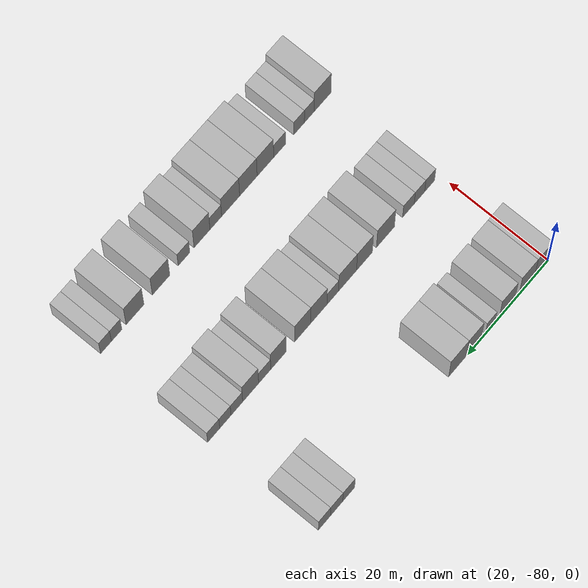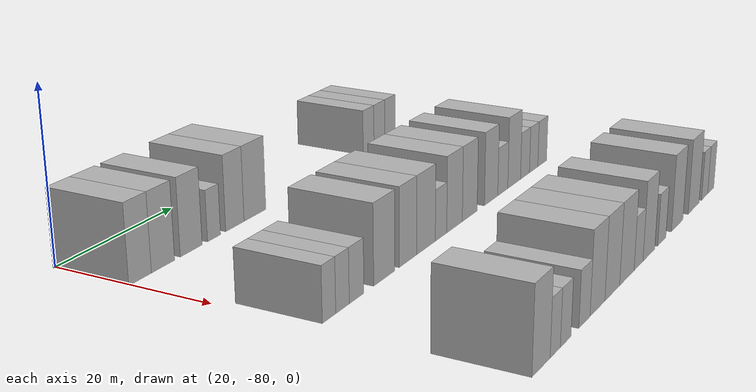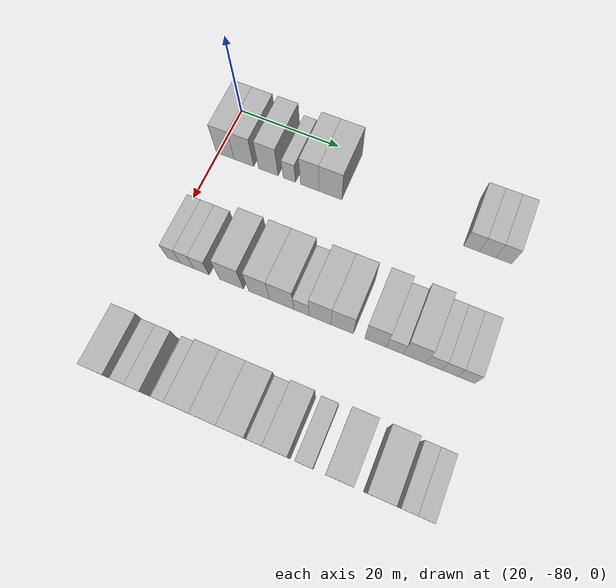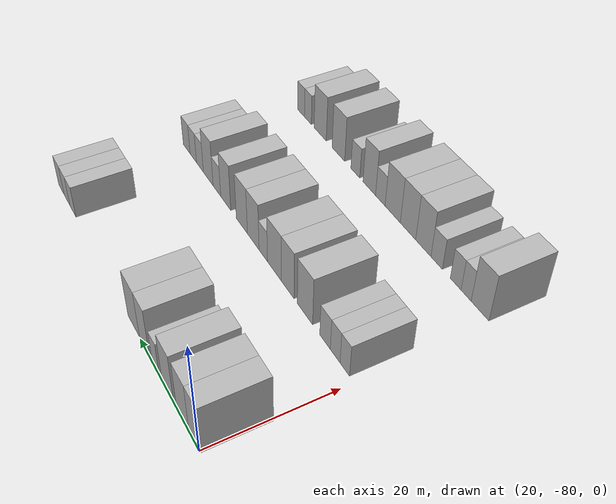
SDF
<sdf version="1.6">
 <world name="default">
  <model name="building_80">
   <static>1</static>
   <pose>25.0000 -78.4971 0 0.000000 0.000000 0.000000</pose>
   <link name="link">
    <pose>0 0 4.50 0 0 0</pose>
    <collision name="collision"><geometry><box><size>10.0000 3.6880 9.0000</size></box></geometry></collision>
    <visual name="visual">
     <cast_shadows>0</cast_shadows>
     <geometry><box><size>10.0000 3.6880 9.0000</size></box></geometry>
     <material>
      <script>
       <uri>model://HANNAS_wall/materials/scripts</uri>
       <uri>model://HANNAS_wall/materials/textures</uri>
       <name>vrc/HANNAS_wall</name>
      </script>
     </material>
    </visual>
   </link>
  </model>
  <model name="building_81">
   <static>1</static>
   <pose>25.0000 -74.6832 0 0.000000 0.000000 0.000000</pose>
   <link name="link">
    <pose>0 0 4.50 0 0 0</pose>
    <collision name="collision"><geometry><box><size>10.0000 3.9398 9.0000</size></box></geometry></collision>
    <visual name="visual">
     <cast_shadows>0</cast_shadows>
     <geometry><box><size>10.0000 3.9398 9.0000</size></box></geometry>
     <material>
      <script>
       <uri>model://HANNAS_wall/materials/scripts</uri>
       <uri>model://HANNAS_wall/materials/textures</uri>
       <name>vrc/HANNAS_wall</name>
      </script>
     </material>
    </visual>
   </link>
  </model>
  <model name="building_82">
   <static>1</static>
   <pose>25.0000 -69.7548 0 0.000000 0.000000 0.000000</pose>
   <link name="link">
    <pose>0 0 4.50 0 0 0</pose>
    <collision name="collision"><geometry><box><size>10.0000 3.9169 9.0000</size></box></geometry></collision>
    <visual name="visual">
     <cast_shadows>0</cast_shadows>
     <geometry><box><size>10.0000 3.9169 9.0000</size></box></geometry>
     <material>
      <script>
       <uri>model://HANNAS_wall/materials/scripts</uri>
       <uri>model://HANNAS_wall/materials/textures</uri>
       <name>vrc/HANNAS_wall</name>
      </script>
     </material>
    </visual>
   </link>
  </model>
  <model name="building_83">
   <static>1</static>
   <pose>25.0000 -65.5745 0 0.000000 0.000000 0.000000</pose>
   <link name="link">
    <pose>0 0 3.00 0 0 0</pose>
    <collision name="collision"><geometry><box><size>10.0000 2.4438 6.0000</size></box></geometry></collision>
    <visual name="visual">
     <cast_shadows>0</cast_shadows>
     <geometry><box><size>10.0000 2.4438 6.0000</size></box></geometry>
     <material>
      <script>
       <uri>model://HANNAS_wall/materials/scripts</uri>
       <uri>model://HANNAS_wall/materials/textures</uri>
       <name>vrc/HANNAS_wall</name>
      </script>
     </material>
    </visual>
   </link>
  </model>
  <model name="building_84">
   <static>1</static>
   <pose>25.0000 -61.5470 0 0.000000 0.000000 0.000000</pose>
   <link name="link">
    <pose>0 0 4.50 0 0 0</pose>
    <collision name="collision"><geometry><box><size>10.0000 3.6112 9.0000</size></box></geometry></collision>
    <visual name="visual">
     <cast_shadows>0</cast_shadows>
     <geometry><box><size>10.0000 3.6112 9.0000</size></box></geometry>
     <material>
      <script>
       <uri>model://HANNAS_wall/materials/scripts</uri>
       <uri>model://HANNAS_wall/materials/textures</uri>
       <name>vrc/HANNAS_wall</name>
      </script>
     </material>
    </visual>
   </link>
  </model>
  <model name="building_85">
   <static>1</static>
   <pose>25.0000 -57.5082 0 0.000000 0.000000 0.000000</pose>
   <link name="link">
    <pose>0 0 4.50 0 0 0</pose>
    <collision name="collision"><geometry><box><size>10.0000 4.4663 9.0000</size></box></geometry></collision>
    <visual name="visual">
     <cast_shadows>0</cast_shadows>
     <geometry><box><size>10.0000 4.4663 9.0000</size></box></geometry>
     <material>
      <script>
       <uri>model://HANNAS_wall/materials/scripts</uri>
       <uri>model://HANNAS_wall/materials/textures</uri>
       <name>vrc/HANNAS_wall</name>
      </script>
     </material>
    </visual>
   </link>
  </model>
  <model name="building_86">
   <static>1</static>
   <pose>25.0000 -30.9335 0 0.000000 0.000000 0.000000</pose>
   <link name="link">
    <pose>0 0 3.00 0 0 0</pose>
    <collision name="collision"><geometry><box><size>10.0000 2.8944 6.0000</size></box></geometry></collision>
    <visual name="visual">
     <cast_shadows>0</cast_shadows>
     <geometry><box><size>10.0000 2.8944 6.0000</size></box></geometry>
     <material>
      <script>
       <uri>model://HANNAS_wall/materials/scripts</uri>
       <uri>model://HANNAS_wall/materials/textures</uri>
       <name>vrc/HANNAS_wall</name>
      </script>
     </material>
    </visual>
   </link>
  </model>
  <model name="building_87">
   <static>1</static>
   <pose>25.0000 -28.0067 0 0.000000 0.000000 0.000000</pose>
   <link name="link">
    <pose>0 0 3.00 0 0 0</pose>
    <collision name="collision"><geometry><box><size>10.0000 2.9592 6.0000</size></box></geometry></collision>
    <visual name="visual">
     <cast_shadows>0</cast_shadows>
     <geometry><box><size>10.0000 2.9592 6.0000</size></box></geometry>
     <material>
      <script>
       <uri>model://HANNAS_wall/materials/scripts</uri>
       <uri>model://HANNAS_wall/materials/textures</uri>
       <name>vrc/HANNAS_wall</name>
      </script>
     </material>
    </visual>
   </link>
  </model>
  <model name="building_88">
   <static>1</static>
   <pose>25.0000 -25.0780 0 0.000000 0.000000 0.000000</pose>
   <link name="link">
    <pose>0 0 3.00 0 0 0</pose>
    <collision name="collision"><geometry><box><size>10.0000 2.8982 6.0000</size></box></geometry></collision>
    <visual name="visual">
     <cast_shadows>0</cast_shadows>
     <geometry><box><size>10.0000 2.8982 6.0000</size></box></geometry>
     <material>
      <script>
       <uri>model://HANNAS_wall/materials/scripts</uri>
       <uri>model://HANNAS_wall/materials/textures</uri>
       <name>vrc/HANNAS_wall</name>
      </script>
     </material>
    </visual>
   </link>
  </model>
  <model name="building_268">
   <static>1</static>
   <pose>47.0000 -77.5314 0 0.000000 0.000000 0.000000</pose>
   <link name="link">
    <pose>0 0 3.00 0 0 0</pose>
    <collision name="collision"><geometry><box><size>10.0000 2.4999 6.0000</size></box></geometry></collision>
    <visual name="visual">
     <cast_shadows>0</cast_shadows>
     <geometry><box><size>10.0000 2.4999 6.0000</size></box></geometry>
     <material>
      <script>
       <uri>model://HANNAS_wall/materials/scripts</uri>
       <uri>model://HANNAS_wall/materials/textures</uri>
       <name>vrc/HANNAS_wall</name>
      </script>
     </material>
    </visual>
   </link>
  </model>
  <model name="building_269">
   <static>1</static>
   <pose>47.0000 -74.9834 0 0.000000 0.000000 0.000000</pose>
   <link name="link">
    <pose>0 0 3.00 0 0 0</pose>
    <collision name="collision"><geometry><box><size>10.0000 2.5962 6.0000</size></box></geometry></collision>
    <visual name="visual">
     <cast_shadows>0</cast_shadows>
     <geometry><box><size>10.0000 2.5962 6.0000</size></box></geometry>
     <material>
      <script>
       <uri>model://HANNAS_wall/materials/scripts</uri>
       <uri>model://HANNAS_wall/materials/textures</uri>
       <name>vrc/HANNAS_wall</name>
      </script>
     </material>
    </visual>
   </link>
  </model>
  <model name="building_270">
   <static>1</static>
   <pose>47.0000 -72.2313 0 0.000000 0.000000 0.000000</pose>
   <link name="link">
    <pose>0 0 3.00 0 0 0</pose>
    <collision name="collision"><geometry><box><size>10.0000 2.9080 6.0000</size></box></geometry></collision>
    <visual name="visual">
     <cast_shadows>0</cast_shadows>
     <geometry><box><size>10.0000 2.9080 6.0000</size></box></geometry>
     <material>
      <script>
       <uri>model://HANNAS_wall/materials/scripts</uri>
       <uri>model://HANNAS_wall/materials/textures</uri>
       <name>vrc/HANNAS_wall</name>
      </script>
     </material>
    </visual>
   </link>
  </model>
  <model name="building_271">
   <static>1</static>
   <pose>47.0000 -66.5383 0 0.000000 0.000000 0.000000</pose>
   <link name="link">
    <pose>0 0 4.50 0 0 0</pose>
    <collision name="collision"><geometry><box><size>10.0000 4.4780 9.0000</size></box></geometry></collision>
    <visual name="visual">
     <cast_shadows>0</cast_shadows>
     <geometry><box><size>10.0000 4.4780 9.0000</size></box></geometry>
     <material>
      <script>
       <uri>model://HANNAS_wall/materials/scripts</uri>
       <uri>model://HANNAS_wall/materials/textures</uri>
       <name>vrc/HANNAS_wall</name>
      </script>
     </material>
    </visual>
   </link>
  </model>
  <model name="building_272">
   <static>1</static>
   <pose>47.0000 -61.3468 0 0.000000 0.000000 0.000000</pose>
   <link name="link">
    <pose>0 0 4.50 0 0 0</pose>
    <collision name="collision"><geometry><box><size>10.0000 3.9050 9.0000</size></box></geometry></collision>
    <visual name="visual">
     <cast_shadows>0</cast_shadows>
     <geometry><box><size>10.0000 3.9050 9.0000</size></box></geometry>
     <material>
      <script>
       <uri>model://HANNAS_wall/materials/scripts</uri>
       <uri>model://HANNAS_wall/materials/textures</uri>
       <name>vrc/HANNAS_wall</name>
      </script>
     </material>
    </visual>
   </link>
  </model>
  <model name="building_273">
   <static>1</static>
   <pose>47.0000 -57.1787 0 0.000000 0.000000 0.000000</pose>
   <link name="link">
    <pose>0 0 4.50 0 0 0</pose>
    <collision name="collision"><geometry><box><size>10.0000 4.4312 9.0000</size></box></geometry></collision>
    <visual name="visual">
     <cast_shadows>0</cast_shadows>
     <geometry><box><size>10.0000 4.4312 9.0000</size></box></geometry>
     <material>
      <script>
       <uri>model://HANNAS_wall/materials/scripts</uri>
       <uri>model://HANNAS_wall/materials/textures</uri>
       <name>vrc/HANNAS_wall</name>
      </script>
     </material>
    </visual>
   </link>
  </model>
  <model name="building_274">
   <static>1</static>
   <pose>47.0000 -53.5641 0 0.000000 0.000000 0.000000</pose>
   <link name="link">
    <pose>0 0 3.00 0 0 0</pose>
    <collision name="collision"><geometry><box><size>10.0000 2.7979 6.0000</size></box></geometry></collision>
    <visual name="visual">
     <cast_shadows>0</cast_shadows>
     <geometry><box><size>10.0000 2.7979 6.0000</size></box></geometry>
     <material>
      <script>
       <uri>model://HANNAS_wall/materials/scripts</uri>
       <uri>model://HANNAS_wall/materials/textures</uri>
       <name>vrc/HANNAS_wall</name>
      </script>
     </material>
    </visual>
   </link>
  </model>
  <model name="building_275">
   <static>1</static>
   <pose>47.0000 -50.1755 0 0.000000 0.000000 0.000000</pose>
   <link name="link">
    <pose>0 0 4.50 0 0 0</pose>
    <collision name="collision"><geometry><box><size>10.0000 3.9793 9.0000</size></box></geometry></collision>
    <visual name="visual">
     <cast_shadows>0</cast_shadows>
     <geometry><box><size>10.0000 3.9793 9.0000</size></box></geometry>
     <material>
      <script>
       <uri>model://HANNAS_wall/materials/scripts</uri>
       <uri>model://HANNAS_wall/materials/textures</uri>
       <name>vrc/HANNAS_wall</name>
      </script>
     </material>
    </visual>
   </link>
  </model>
  <model name="building_276">
   <static>1</static>
   <pose>47.0000 -46.2096 0 0.000000 0.000000 0.000000</pose>
   <link name="link">
    <pose>0 0 4.50 0 0 0</pose>
    <collision name="collision"><geometry><box><size>10.0000 3.9526 9.0000</size></box></geometry></collision>
    <visual name="visual">
     <cast_shadows>0</cast_shadows>
     <geometry><box><size>10.0000 3.9526 9.0000</size></box></geometry>
     <material>
      <script>
       <uri>model://HANNAS_wall/materials/scripts</uri>
       <uri>model://HANNAS_wall/materials/textures</uri>
       <name>vrc/HANNAS_wall</name>
      </script>
     </material>
    </visual>
   </link>
  </model>
  <model name="building_277">
   <static>1</static>
   <pose>47.0000 -40.3421 0 0.000000 0.000000 0.000000</pose>
   <link name="link">
    <pose>0 0 4.50 0 0 0</pose>
    <collision name="collision"><geometry><box><size>10.0000 3.7823 9.0000</size></box></geometry></collision>
    <visual name="visual">
     <cast_shadows>0</cast_shadows>
     <geometry><box><size>10.0000 3.7823 9.0000</size></box></geometry>
     <material>
      <script>
       <uri>model://HANNAS_wall/materials/scripts</uri>
       <uri>model://HANNAS_wall/materials/textures</uri>
       <name>vrc/HANNAS_wall</name>
      </script>
     </material>
    </visual>
   </link>
  </model>
  <model name="building_278">
   <static>1</static>
   <pose>47.0000 -36.9890 0 0.000000 0.000000 0.000000</pose>
   <link name="link">
    <pose>0 0 3.00 0 0 0</pose>
    <collision name="collision"><geometry><box><size>10.0000 2.9237 6.0000</size></box></geometry></collision>
    <visual name="visual">
     <cast_shadows>0</cast_shadows>
     <geometry><box><size>10.0000 2.9237 6.0000</size></box></geometry>
     <material>
      <script>
       <uri>model://HANNAS_wall/materials/scripts</uri>
       <uri>model://HANNAS_wall/materials/textures</uri>
       <name>vrc/HANNAS_wall</name>
      </script>
     </material>
    </visual>
   </link>
  </model>
  <model name="building_279">
   <static>1</static>
   <pose>47.0000 -33.6004 0 0.000000 0.000000 0.000000</pose>
   <link name="link">
    <pose>0 0 4.50 0 0 0</pose>
    <collision name="collision"><geometry><box><size>10.0000 3.8535 9.0000</size></box></geometry></collision>
    <visual name="visual">
     <cast_shadows>0</cast_shadows>
     <geometry><box><size>10.0000 3.8535 9.0000</size></box></geometry>
     <material>
      <script>
       <uri>model://HANNAS_wall/materials/scripts</uri>
       <uri>model://HANNAS_wall/materials/textures</uri>
       <name>vrc/HANNAS_wall</name>
      </script>
     </material>
    </visual>
   </link>
  </model>
  <model name="building_280">
   <static>1</static>
   <pose>47.0000 -30.2748 0 0.000000 0.000000 0.000000</pose>
   <link name="link">
    <pose>0 0 3.00 0 0 0</pose>
    <collision name="collision"><geometry><box><size>10.0000 2.7978 6.0000</size></box></geometry></collision>
    <visual name="visual">
     <cast_shadows>0</cast_shadows>
     <geometry><box><size>10.0000 2.7978 6.0000</size></box></geometry>
     <material>
      <script>
       <uri>model://HANNAS_wall/materials/scripts</uri>
       <uri>model://HANNAS_wall/materials/textures</uri>
       <name>vrc/HANNAS_wall</name>
      </script>
     </material>
    </visual>
   </link>
  </model>
  <model name="building_281">
   <static>1</static>
   <pose>47.0000 -27.5278 0 0.000000 0.000000 0.000000</pose>
   <link name="link">
    <pose>0 0 3.00 0 0 0</pose>
    <collision name="collision"><geometry><box><size>10.0000 2.6961 6.0000</size></box></geometry></collision>
    <visual name="visual">
     <cast_shadows>0</cast_shadows>
     <geometry><box><size>10.0000 2.6961 6.0000</size></box></geometry>
     <material>
      <script>
       <uri>model://HANNAS_wall/materials/scripts</uri>
       <uri>model://HANNAS_wall/materials/textures</uri>
       <name>vrc/HANNAS_wall</name>
      </script>
     </material>
    </visual>
   </link>
  </model>
  <model name="building_282">
   <static>1</static>
   <pose>47.0000 -24.7297 0 0.000000 0.000000 0.000000</pose>
   <link name="link">
    <pose>0 0 3.00 0 0 0</pose>
    <collision name="collision"><geometry><box><size>10.0000 2.9001 6.0000</size></box></geometry></collision>
    <visual name="visual">
     <cast_shadows>0</cast_shadows>
     <geometry><box><size>10.0000 2.9001 6.0000</size></box></geometry>
     <material>
      <script>
       <uri>model://HANNAS_wall/materials/scripts</uri>
       <uri>model://HANNAS_wall/materials/textures</uri>
       <name>vrc/HANNAS_wall</name>
      </script>
     </material>
    </visual>
   </link>
  </model>
  <model name="building_458">
   <static>1</static>
   <pose>69.0000 -77.5084 0 0.000000 0.000000 0.000000</pose>
   <link name="link">
    <pose>0 0 4.50 0 0 0</pose>
    <collision name="collision"><geometry><box><size>10.0000 4.1806 9.0000</size></box></geometry></collision>
    <visual name="visual">
     <cast_shadows>0</cast_shadows>
     <geometry><box><size>10.0000 4.1806 9.0000</size></box></geometry>
     <material>
      <script>
       <uri>model://HANNAS_wall/materials/scripts</uri>
       <uri>model://HANNAS_wall/materials/textures</uri>
       <name>vrc/HANNAS_wall</name>
      </script>
     </material>
    </visual>
   </link>
  </model>
  <model name="building_459">
   <static>1</static>
   <pose>69.0000 -74.1992 0 0.000000 0.000000 0.000000</pose>
   <link name="link">
    <pose>0 0 3.00 0 0 0</pose>
    <collision name="collision"><geometry><box><size>10.0000 2.4377 6.0000</size></box></geometry></collision>
    <visual name="visual">
     <cast_shadows>0</cast_shadows>
     <geometry><box><size>10.0000 2.4377 6.0000</size></box></geometry>
     <material>
      <script>
       <uri>model://HANNAS_wall/materials/scripts</uri>
       <uri>model://HANNAS_wall/materials/textures</uri>
       <name>vrc/HANNAS_wall</name>
      </script>
     </material>
    </visual>
   </link>
  </model>
  <model name="building_460">
   <static>1</static>
   <pose>69.0000 -71.6578 0 0.000000 0.000000 0.000000</pose>
   <link name="link">
    <pose>0 0 3.00 0 0 0</pose>
    <collision name="collision"><geometry><box><size>10.0000 2.6452 6.0000</size></box></geometry></collision>
    <visual name="visual">
     <cast_shadows>0</cast_shadows>
     <geometry><box><size>10.0000 2.6452 6.0000</size></box></geometry>
     <material>
      <script>
       <uri>model://HANNAS_wall/materials/scripts</uri>
       <uri>model://HANNAS_wall/materials/textures</uri>
       <name>vrc/HANNAS_wall</name>
      </script>
     </material>
    </visual>
   </link>
  </model>
  <model name="building_461">
   <static>1</static>
   <pose>69.0000 -66.8563 0 0.000000 0.000000 0.000000</pose>
   <link name="link">
    <pose>0 0 3.00 0 0 0</pose>
    <collision name="collision"><geometry><box><size>10.0000 2.9577 6.0000</size></box></geometry></collision>
    <visual name="visual">
     <cast_shadows>0</cast_shadows>
     <geometry><box><size>10.0000 2.9577 6.0000</size></box></geometry>
     <material>
      <script>
       <uri>model://HANNAS_wall/materials/scripts</uri>
       <uri>model://HANNAS_wall/materials/textures</uri>
       <name>vrc/HANNAS_wall</name>
      </script>
     </material>
    </visual>
   </link>
  </model>
  <model name="building_462">
   <static>1</static>
   <pose>69.0000 -63.3344 0 0.000000 0.000000 0.000000</pose>
   <link name="link">
    <pose>0 0 4.50 0 0 0</pose>
    <collision name="collision"><geometry><box><size>10.0000 4.0861 9.0000</size></box></geometry></collision>
    <visual name="visual">
     <cast_shadows>0</cast_shadows>
     <geometry><box><size>10.0000 4.0861 9.0000</size></box></geometry>
     <material>
      <script>
       <uri>model://HANNAS_wall/materials/scripts</uri>
       <uri>model://HANNAS_wall/materials/textures</uri>
       <name>vrc/HANNAS_wall</name>
      </script>
     </material>
    </visual>
   </link>
  </model>
  <model name="building_463">
   <static>1</static>
   <pose>69.0000 -59.1514 0 0.000000 0.000000 0.000000</pose>
   <link name="link">
    <pose>0 0 4.50 0 0 0</pose>
    <collision name="collision"><geometry><box><size>10.0000 4.2797 9.0000</size></box></geometry></collision>
    <visual name="visual">
     <cast_shadows>0</cast_shadows>
     <geometry><box><size>10.0000 4.2797 9.0000</size></box></geometry>
     <material>
      <script>
       <uri>model://HANNAS_wall/materials/scripts</uri>
       <uri>model://HANNAS_wall/materials/textures</uri>
       <name>vrc/HANNAS_wall</name>
      </script>
     </material>
    </visual>
   </link>
  </model>
  <model name="building_464">
   <static>1</static>
   <pose>69.0000 -54.8104 0 0.000000 0.000000 0.000000</pose>
   <link name="link">
    <pose>0 0 4.50 0 0 0</pose>
    <collision name="collision"><geometry><box><size>10.0000 4.4024 9.0000</size></box></geometry></collision>
    <visual name="visual">
     <cast_shadows>0</cast_shadows>
     <geometry><box><size>10.0000 4.4024 9.0000</size></box></geometry>
     <material>
      <script>
       <uri>model://HANNAS_wall/materials/scripts</uri>
       <uri>model://HANNAS_wall/materials/textures</uri>
       <name>vrc/HANNAS_wall</name>
      </script>
     </material>
    </visual>
   </link>
  </model>
  <model name="building_465">
   <static>1</static>
   <pose>69.0000 -51.1869 0 0.000000 0.000000 0.000000</pose>
   <link name="link">
    <pose>0 0 3.00 0 0 0</pose>
    <collision name="collision"><geometry><box><size>10.0000 2.8445 6.0000</size></box></geometry></collision>
    <visual name="visual">
     <cast_shadows>0</cast_shadows>
     <geometry><box><size>10.0000 2.8445 6.0000</size></box></geometry>
     <material>
      <script>
       <uri>model://HANNAS_wall/materials/scripts</uri>
       <uri>model://HANNAS_wall/materials/textures</uri>
       <name>vrc/HANNAS_wall</name>
      </script>
     </material>
    </visual>
   </link>
  </model>
  <model name="building_466">
   <static>1</static>
   <pose>69.0000 -47.8264 0 0.000000 0.000000 0.000000</pose>
   <link name="link">
    <pose>0 0 4.50 0 0 0</pose>
    <collision name="collision"><geometry><box><size>10.0000 3.8765 9.0000</size></box></geometry></collision>
    <visual name="visual">
     <cast_shadows>0</cast_shadows>
     <geometry><box><size>10.0000 3.8765 9.0000</size></box></geometry>
     <material>
      <script>
       <uri>model://HANNAS_wall/materials/scripts</uri>
       <uri>model://HANNAS_wall/materials/textures</uri>
       <name>vrc/HANNAS_wall</name>
      </script>
     </material>
    </visual>
   </link>
  </model>
  <model name="building_467">
   <static>1</static>
   <pose>69.0000 -43.4659 0 0.000000 0.000000 0.000000</pose>
   <link name="link">
    <pose>0 0 3.00 0 0 0</pose>
    <collision name="collision"><geometry><box><size>10.0000 2.8446 6.0000</size></box></geometry></collision>
    <visual name="visual">
     <cast_shadows>0</cast_shadows>
     <geometry><box><size>10.0000 2.8446 6.0000</size></box></geometry>
     <material>
      <script>
       <uri>model://HANNAS_wall/materials/scripts</uri>
       <uri>model://HANNAS_wall/materials/textures</uri>
       <name>vrc/HANNAS_wall</name>
      </script>
     </material>
    </visual>
   </link>
  </model>
  <model name="building_468">
   <static>1</static>
   <pose>69.0000 -37.9304 0 0.000000 0.000000 0.000000</pose>
   <link name="link">
    <pose>0 0 4.50 0 0 0</pose>
    <collision name="collision"><geometry><box><size>10.0000 4.2264 9.0000</size></box></geometry></collision>
    <visual name="visual">
     <cast_shadows>0</cast_shadows>
     <geometry><box><size>10.0000 4.2264 9.0000</size></box></geometry>
     <material>
      <script>
       <uri>model://HANNAS_wall/materials/scripts</uri>
       <uri>model://HANNAS_wall/materials/textures</uri>
       <name>vrc/HANNAS_wall</name>
      </script>
     </material>
    </visual>
   </link>
  </model>
  <model name="building_469">
   <static>1</static>
   <pose>69.0000 -31.6693 0 0.000000 0.000000 0.000000</pose>
   <link name="link">
    <pose>0 0 4.50 0 0 0</pose>
    <collision name="collision"><geometry><box><size>10.0000 4.2957 9.0000</size></box></geometry></collision>
    <visual name="visual">
     <cast_shadows>0</cast_shadows>
     <geometry><box><size>10.0000 4.2957 9.0000</size></box></geometry>
     <material>
      <script>
       <uri>model://HANNAS_wall/materials/scripts</uri>
       <uri>model://HANNAS_wall/materials/textures</uri>
       <name>vrc/HANNAS_wall</name>
      </script>
     </material>
    </visual>
   </link>
  </model>
  <model name="building_470">
   <static>1</static>
   <pose>69.0000 -27.2657 0 0.000000 0.000000 0.000000</pose>
   <link name="link">
    <pose>0 0 3.00 0 0 0</pose>
    <collision name="collision"><geometry><box><size>10.0000 2.5116 6.0000</size></box></geometry></collision>
    <visual name="visual">
     <cast_shadows>0</cast_shadows>
     <geometry><box><size>10.0000 2.5116 6.0000</size></box></geometry>
     <material>
      <script>
       <uri>model://HANNAS_wall/materials/scripts</uri>
       <uri>model://HANNAS_wall/materials/textures</uri>
       <name>vrc/HANNAS_wall</name>
      </script>
     </material>
    </visual>
   </link>
  </model>
  <model name="building_471">
   <static>1</static>
   <pose>69.0000 -24.7195 0 0.000000 0.000000 0.000000</pose>
   <link name="link">
    <pose>0 0 3.00 0 0 0</pose>
    <collision name="collision"><geometry><box><size>10.0000 2.5809 6.0000</size></box></geometry></collision>
    <visual name="visual">
     <cast_shadows>0</cast_shadows>
     <geometry><box><size>10.0000 2.5809 6.0000</size></box></geometry>
     <material>
      <script>
       <uri>model://HANNAS_wall/materials/scripts</uri>
       <uri>model://HANNAS_wall/materials/textures</uri>
       <name>vrc/HANNAS_wall</name>
      </script>
     </material>
    </visual>
   </link>
  </model>
 </world>
</sdf>
